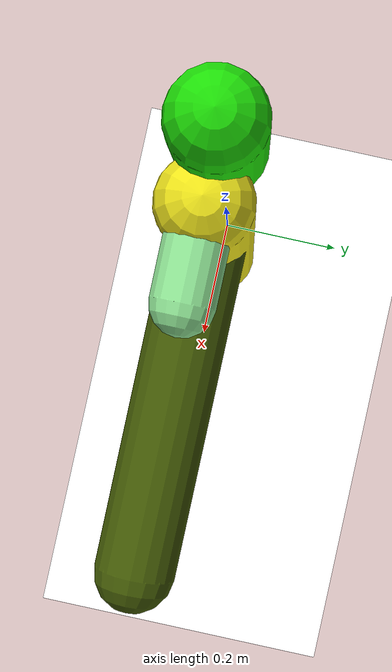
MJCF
<mujoco model="morphology">
  <option timestep="0.01"/>
  <default>
    <default class="/"/>
  </default>
  <asset>
    <texture name="texplane" type="2d" builtin="checker" rgb1="0.1 0.2 0.3" rgb2="0.2 0.3 0.4" width="300" height="300"/>
    <material name="MatPlane" class="/" texture="texplane" texrepeat="20 20" specular="1" shininess="1" reflectance="0.5"/>
  </asset>
  <worldbody>
    <light name="//unnamed_light_0" class="/" directional="true" pos="0 0 1.5" dir="0 0 -1.3" cutoff="1e+02" exponent="1" diffuse="1 1 1" specular="0.1 0.1 0.1"/>
    <geom name="ground" class="/" type="plane" size="15 15 0.5" material="MatPlane" rgba="1 1 1 1"/>
    <body name="body" pos="0 0 0.65">
      <geom name="geom0" class="/" type="capsule" contype="1" conaffinity="1" condim="3" size="0.06" rgba="0.11 0.85 0.022 1" friction="0.4 0.1 0.1" fromto="0 0 0 0.0072 0 0.18"/>
      <body name="body1" pos="0.0034 0 0.085">
        <geom name="geom1" class="/" type="capsule" contype="1" conaffinity="1" condim="3" size="0.04" rgba="0.56 0.89 0.58 1" friction="0.4 0.1 0.1" fromto="0 0 0 0.2 0 -0.007"/>
        <body name="body2" pos="0.08 0 -0.0028">
          <geom name="geom2" class="/" type="capsule" contype="1" conaffinity="1" condim="3" size="0.061" rgba="0.92 0.88 0.1 1" friction="0.4 0.1 0.1" fromto="0 0 0 -0.014 0 -0.63"/>
          <body name="body3" pos="-0.0043 0 -0.2">
            <geom name="geom3" class="/" type="capsule" contype="1" conaffinity="1" condim="3" size="0.055" rgba="0.26 0.35 0.019 1" friction="0.4 0.1 0.1" fromto="0 0 0 0.48 0 -0.018"/>
            <joint name="joint3" class="/" type="hinge" axis="0 1 0" limited="true" stiffness="20" range="-58 58" armature="0.1" damping="2"/>
          </body>
          <joint name="joint2" class="/" type="hinge" axis="0 1 0" limited="true" stiffness="20" range="-55 55" armature="0.1" damping="2"/>
        </body>
        <joint name="joint1" class="/" type="hinge" axis="0 1 0" limited="true" stiffness="20" range="-68 68" armature="0.1" damping="2"/>
      </body>
      <joint name="rootx" class="/" type="slide" axis="1 0 0" limited="false" stiffness="0" armature="0" damping="0"/>
      <joint name="rootz" class="/" type="slide" axis="0 0 1" limited="false" stiffness="0" armature="0" damping="0"/>
      <joint name="rooty" class="/" type="hinge" axis="0 1 0" limited="false" stiffness="0" armature="0" damping="0"/>
    </body>
  </worldbody>
  <actuator>
    <motor name="motor3" class="/" ctrllimited="true" ctrlrange="-1 1" gear="1.4e+02" joint="joint3"/>
    <motor name="motor2" class="/" ctrllimited="true" ctrlrange="-1 1" gear="1.2e+02" joint="joint2"/>
    <motor name="motor1" class="/" ctrllimited="true" ctrlrange="-1 1" gear="1.5e+02" joint="joint1"/>
  </actuator>
  <sensor>
    <subtreelinvel name="velocity" body="body"/>
  </sensor>
</mujoco>
